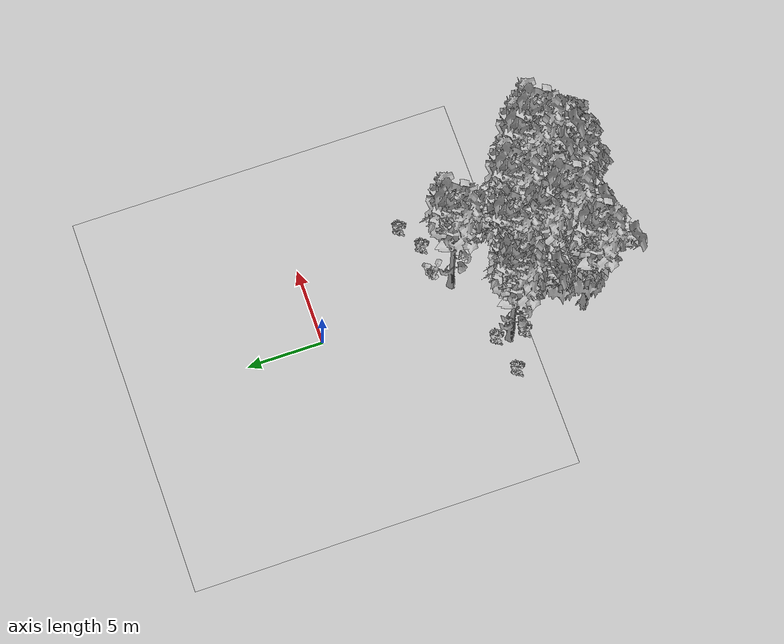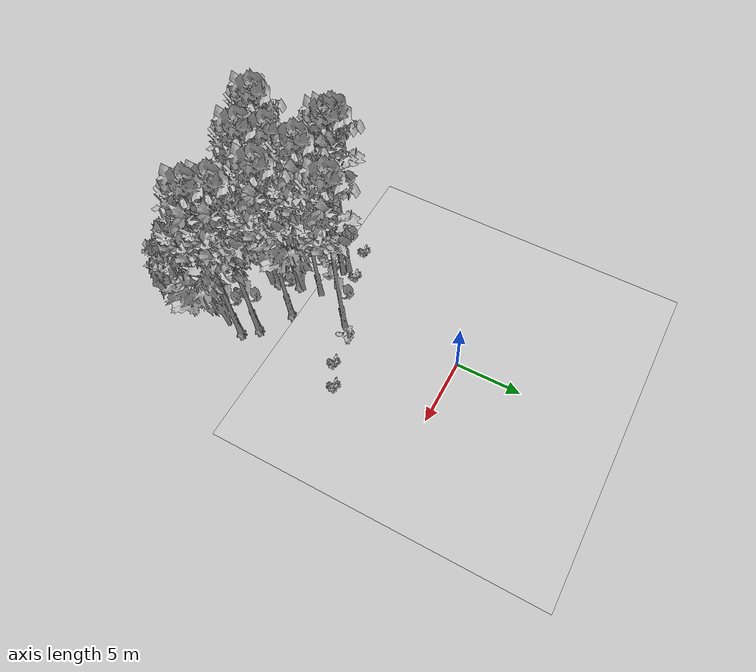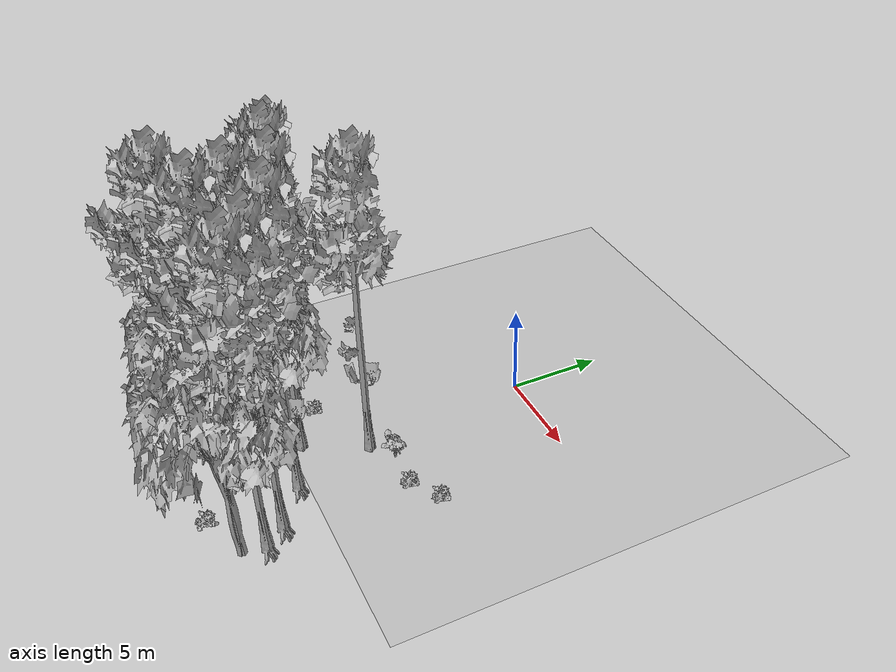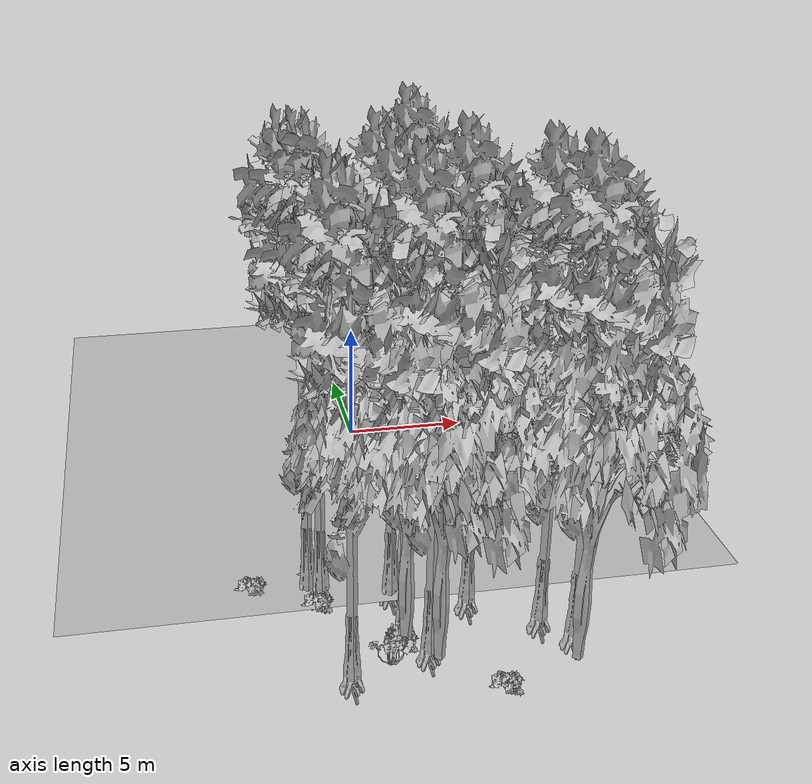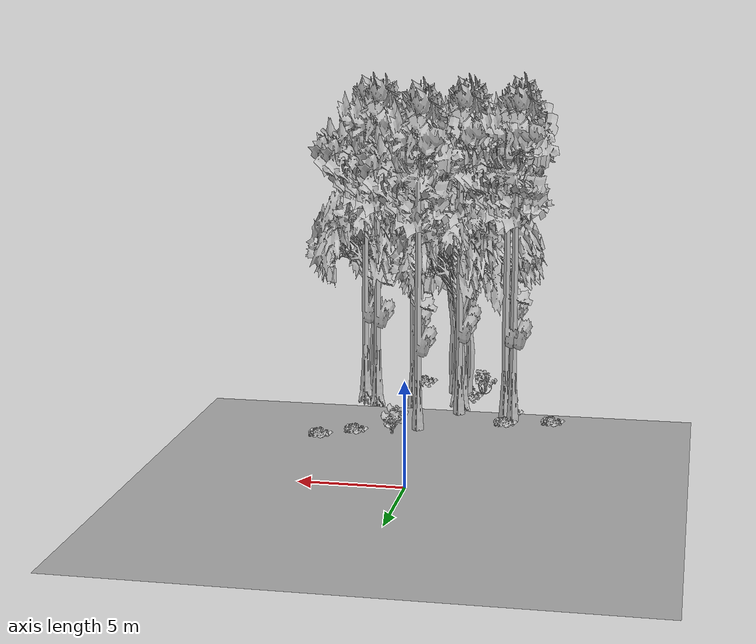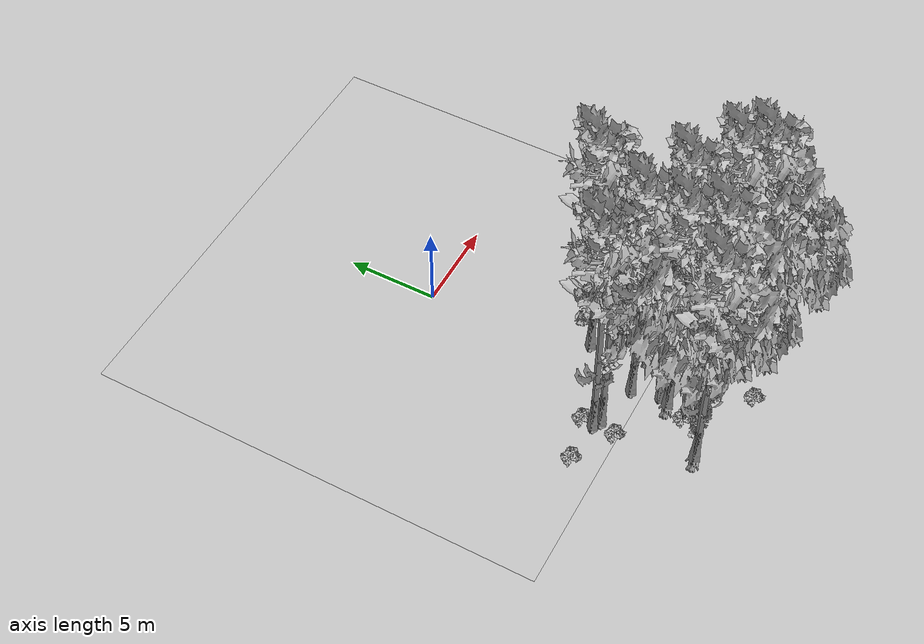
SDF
<sdf version="1.7">
 <world name="default">
  <model name="ground_plane">
   <static>1</static>
   <link name="link">
    <collision name="collision">
     <pose>-50 0 0 0 -0 0</pose>
     <geometry><plane><normal>0 0 1</normal><size>80 80</size></plane></geometry>
     <surface><contact><ode><min_depth>0.01</min_depth><max_vel>0</max_vel></ode></contact></surface>
    </collision>
    <visual name="grass">
     <cast_shadows>0</cast_shadows>
     <geometry>
      <mesh>
       <scale>0.46714285714285714 0.46714285714285714 0.1</scale>
       <uri>file://grass_plane/meshes/grass_plane.dae</uri>
      </mesh>
     </geometry>
    </visual>
   </link>
  </model>
  <model name="Tree 102">
   <static>1</static>
   <pose>-0.8120430416650066 -15.074554874999855 0 1.57079 -0 0</pose>
   <link name="link">
    <collision name="collision">
     <geometry><mesh><scale>3.5 5 3.5</scale><uri>model://tree_2/meshes/tree_2.obj</uri></mesh></geometry>
    </collision>
    <visual name="visual">
     <geometry><mesh><scale>3.5 5 3.5</scale><uri>model://tree_2/meshes/tree_2.obj</uri></mesh></geometry>
    </visual>
   </link>
  </model>
  <model name="Tree 119">
   <static>1</static>
   <pose>-0.6578170349143093 -12.017405250482902 0 1.57079 -0 0</pose>
   <link name="link">
    <collision name="collision">
     <geometry><mesh><scale>3.5 5 3.5</scale><uri>model://tree_9/meshes/tree_9.obj</uri></mesh></geometry>
    </collision>
    <visual name="visual">
     <geometry><mesh><scale>3.5 5 3.5</scale><uri>model://tree_9/meshes/tree_9.obj</uri></mesh></geometry>
    </visual>
   </link>
  </model>
  <model name="Tree 189">
   <static>1</static>
   <pose>-2.843705343816538 -16.501149992675472 0 1.57079 -0 0</pose>
   <link name="link">
    <collision name="collision">
     <geometry><mesh><scale>3.5 5 3.5</scale><uri>model://tree_9/meshes/tree_9.obj</uri></mesh></geometry>
    </collision>
    <visual name="visual">
     <geometry><mesh><scale>3.5 5 3.5</scale><uri>model://tree_9/meshes/tree_9.obj</uri></mesh></geometry>
    </visual>
   </link>
  </model>
  <model name="Tree 198">
   <static>1</static>
   <pose>4.74025885542143 -16.72520494927168 0 1.57079 -0 0</pose>
   <link name="link">
    <collision name="collision">
     <geometry><mesh><scale>3.5 5 3.5</scale><uri>model://tree_2/meshes/tree_2.obj</uri></mesh></geometry>
    </collision>
    <visual name="visual">
     <geometry><mesh><scale>3.5 5 3.5</scale><uri>model://tree_2/meshes/tree_2.obj</uri></mesh></geometry>
    </visual>
   </link>
  </model>
  <model name="Tree 234">
   <static>1</static>
   <pose>0.1624789871438992 -15.924554394783446 0 1.57079 -0 0</pose>
   <link name="link">
    <collision name="collision">
     <geometry><mesh><scale>3.5 5 3.5</scale><uri>model://tree_2/meshes/tree_2.obj</uri></mesh></geometry>
    </collision>
    <visual name="visual">
     <geometry><mesh><scale>3.5 5 3.5</scale><uri>model://tree_2/meshes/tree_2.obj</uri></mesh></geometry>
    </visual>
   </link>
  </model>
  <model name="Tree 247">
   <static>1</static>
   <pose>-0.04565344887065237 -15.591955945789103 0 1.57079 -0 0</pose>
   <link name="link">
    <collision name="collision">
     <geometry><mesh><scale>3.5 5 3.5</scale><uri>model://tree_9/meshes/tree_9.obj</uri></mesh></geometry>
    </collision>
    <visual name="visual">
     <geometry><mesh><scale>3.5 5 3.5</scale><uri>model://tree_9/meshes/tree_9.obj</uri></mesh></geometry>
    </visual>
   </link>
  </model>
  <model name="Tree 275">
   <static>1</static>
   <pose>-3.563522392800486 -11.249197422716719 0 1.57079 -0 0</pose>
   <link name="link">
    <collision name="collision">
     <geometry><mesh><scale>3.5 5 3.5</scale><uri>model://tree_9/meshes/tree_9.obj</uri></mesh></geometry>
    </collision>
    <visual name="visual">
     <geometry><mesh><scale>3.5 5 3.5</scale><uri>model://tree_9/meshes/tree_9.obj</uri></mesh></geometry>
    </visual>
   </link>
  </model>
  <model name="Tree 277">
   <static>1</static>
   <pose>1.9327708787759192 -13.050684927620715 0 1.57079 -0 0</pose>
   <link name="link">
    <collision name="collision">
     <geometry><mesh><scale>3.5 5 3.5</scale><uri>model://tree_9/meshes/tree_9.obj</uri></mesh></geometry>
    </collision>
    <visual name="visual">
     <geometry><mesh><scale>3.5 5 3.5</scale><uri>model://tree_9/meshes/tree_9.obj</uri></mesh></geometry>
    </visual>
   </link>
  </model>
  <model name="Tree 304">
   <static>1</static>
   <pose>4.175243855858184 -14.530132180567222 0 1.57079 -0 0</pose>
   <link name="link">
    <collision name="collision">
     <geometry><mesh><scale>3.5 5 3.5</scale><uri>model://tree_9/meshes/tree_9.obj</uri></mesh></geometry>
    </collision>
    <visual name="visual">
     <geometry><mesh><scale>3.5 5 3.5</scale><uri>model://tree_9/meshes/tree_9.obj</uri></mesh></geometry>
    </visual>
   </link>
  </model>
  <model name="Tree 321">
   <static>1</static>
   <pose>-0.5692725247034787 -14.004420711663911 0 1.57079 -0 0</pose>
   <link name="link">
    <collision name="collision">
     <geometry><mesh><scale>3.5 5 3.5</scale><uri>model://tree_9/meshes/tree_9.obj</uri></mesh></geometry>
    </collision>
    <visual name="visual">
     <geometry><mesh><scale>3.5 5 3.5</scale><uri>model://tree_9/meshes/tree_9.obj</uri></mesh></geometry>
    </visual>
   </link>
  </model>
  <model name="Tree 447">
   <static>1</static>
   <pose>-0.5292125060628692 -13.50891031638966 0 1.57079 -0 0</pose>
   <link name="link">
    <collision name="collision">
     <geometry><mesh><scale>3.5 5 3.5</scale><uri>model://tree_2/meshes/tree_2.obj</uri></mesh></geometry>
    </collision>
    <visual name="visual">
     <geometry><mesh><scale>3.5 5 3.5</scale><uri>model://tree_2/meshes/tree_2.obj</uri></mesh></geometry>
    </visual>
   </link>
  </model>
  <model name="Tree 582">
   <static>1</static>
   <pose>5.040124385480205 -15.560342798813032 0 1.57079 -0 0</pose>
   <link name="link">
    <collision name="collision">
     <geometry><mesh><scale>3.5 5 3.5</scale><uri>model://tree_9/meshes/tree_9.obj</uri></mesh></geometry>
    </collision>
    <visual name="visual">
     <geometry><mesh><scale>3.5 5 3.5</scale><uri>model://tree_9/meshes/tree_9.obj</uri></mesh></geometry>
    </visual>
   </link>
  </model>
  <model name="Tree 609">
   <static>1</static>
   <pose>0.981454684006728 -8.925124616106437 0 1.57079 -0 0</pose>
   <link name="link">
    <collision name="collision">
     <geometry><mesh><scale>3.5 5 3.5</scale><uri>model://tree_9/meshes/tree_9.obj</uri></mesh></geometry>
    </collision>
    <visual name="visual">
     <geometry><mesh><scale>3.5 5 3.5</scale><uri>model://tree_9/meshes/tree_9.obj</uri></mesh></geometry>
    </visual>
   </link>
  </model>
  <model name="Tree 620">
   <static>1</static>
   <pose>-3.1228411501873836 -11.507242441785728 0 1.57079 -0 0</pose>
   <link name="link">
    <collision name="collision">
     <geometry><mesh><scale>3.5 5 3.5</scale><uri>model://tree_9/meshes/tree_9.obj</uri></mesh></geometry>
    </collision>
    <visual name="visual">
     <geometry><mesh><scale>3.5 5 3.5</scale><uri>model://tree_9/meshes/tree_9.obj</uri></mesh></geometry>
    </visual>
   </link>
  </model>
  <model name="Bush 175">
   <static>1</static>
   <pose>-0.8417679959149567 -15.024886377143396 0 1.57079 -0 0</pose>
   <link name="link">
    <collision name="collision">
     <geometry><mesh><scale>2 2 2</scale><uri>model://bush_2/meshes/bush_2.obj</uri></mesh></geometry>
     <surface><contact><collide_without_contact>false</collide_without_contact></contact></surface>
    </collision>
    <visual name="visual">
     <geometry><mesh><scale>2 2 2</scale><uri>model://bush_2/meshes/bush_2.obj</uri></mesh></geometry>
    </visual>
   </link>
  </model>
  <model name="Bush 221">
   <static>1</static>
   <pose>-3.3514020148626997 -12.37999891709224 0 1.57079 -0 0</pose>
   <link name="link">
    <collision name="collision">
     <geometry><mesh><scale>2 2 2</scale><uri>model://bush_2/meshes/bush_2.obj</uri></mesh></geometry>
     <surface><contact><collide_without_contact>false</collide_without_contact></contact></surface>
    </collision>
    <visual name="visual">
     <geometry><mesh><scale>2 2 2</scale><uri>model://bush_2/meshes/bush_2.obj</uri></mesh></geometry>
    </visual>
   </link>
  </model>
  <model name="Bush 225">
   <static>1</static>
   <pose>2.1213310786300994 -7.996477417864639 0 1.57079 -0 0</pose>
   <link name="link">
    <collision name="collision">
     <geometry><mesh><scale>2 2 2</scale><uri>model://bush_0/meshes/bush_0.obj</uri></mesh></geometry>
     <surface><contact><collide_without_contact>false</collide_without_contact></contact></surface>
    </collision>
    <visual name="visual">
     <geometry><mesh><scale>2 2 2</scale><uri>model://bush_0/meshes/bush_0.obj</uri></mesh></geometry>
    </visual>
   </link>
  </model>
  <model name="Bush 280">
   <static>1</static>
   <pose>-1.3943718850365485 -16.008149951503388 0 1.57079 -0 0</pose>
   <link name="link">
    <collision name="collision">
     <geometry><mesh><scale>2 2 2</scale><uri>model://bush_4/meshes/bush_4.obj</uri></mesh></geometry>
     <surface><contact><collide_without_contact>false</collide_without_contact></contact></surface>
    </collision>
    <visual name="visual">
     <geometry><mesh><scale>2 2 2</scale><uri>model://bush_4/meshes/bush_4.obj</uri></mesh></geometry>
    </visual>
   </link>
  </model>
  <model name="Bush 284">
   <static>1</static>
   <pose>-3.2419287477538887 -10.522109842198361 0 1.57079 -0 0</pose>
   <link name="link">
    <collision name="collision">
     <geometry><mesh><scale>2 2 2</scale><uri>model://bush_2/meshes/bush_2.obj</uri></mesh></geometry>
     <surface><contact><collide_without_contact>false</collide_without_contact></contact></surface>
    </collision>
    <visual name="visual">
     <geometry><mesh><scale>2 2 2</scale><uri>model://bush_2/meshes/bush_2.obj</uri></mesh></geometry>
    </visual>
   </link>
  </model>
  <model name="Bush 296">
   <static>1</static>
   <pose>-5.611323629468103 -11.063472115247297 0 1.57079 -0 0</pose>
   <link name="link">
    <collision name="collision">
     <geometry><mesh><scale>2 2 2</scale><uri>model://bush_2/meshes/bush_2.obj</uri></mesh></geometry>
     <surface><contact><collide_without_contact>false</collide_without_contact></contact></surface>
    </collision>
    <visual name="visual">
     <geometry><mesh><scale>2 2 2</scale><uri>model://bush_2/meshes/bush_2.obj</uri></mesh></geometry>
    </visual>
   </link>
  </model>
  <model name="Bush 379">
   <static>1</static>
   <pose>4.031022241804486 -8.055866619805254 0 1.57079 -0 0</pose>
   <link name="link">
    <collision name="collision">
     <geometry><mesh><scale>2 2 2</scale><uri>model://bush_2/meshes/bush_2.obj</uri></mesh></geometry>
     <surface><contact><collide_without_contact>false</collide_without_contact></contact></surface>
    </collision>
    <visual name="visual">
     <geometry><mesh><scale>2 2 2</scale><uri>model://bush_2/meshes/bush_2.obj</uri></mesh></geometry>
    </visual>
   </link>
  </model>
  <model name="Bush 394">
   <static>1</static>
   <pose>5.638870786232268 -7.080061596762775 0 1.57079 -0 0</pose>
   <link name="link">
    <collision name="collision">
     <geometry><mesh><scale>2 2 2</scale><uri>model://bush_2/meshes/bush_2.obj</uri></mesh></geometry>
     <surface><contact><collide_without_contact>false</collide_without_contact></contact></surface>
    </collision>
    <visual name="visual">
     <geometry><mesh><scale>2 2 2</scale><uri>model://bush_2/meshes/bush_2.obj</uri></mesh></geometry>
    </visual>
   </link>
  </model>
  <model name="Bush 579">
   <static>1</static>
   <pose>2.069748289574548 -17.70857858556881 0 1.57079 -0 0</pose>
   <link name="link">
    <collision name="collision">
     <geometry><mesh><scale>2 2 2</scale><uri>model://bush_2/meshes/bush_2.obj</uri></mesh></geometry>
     <surface><contact><collide_without_contact>false</collide_without_contact></contact></surface>
    </collision>
    <visual name="visual">
     <geometry><mesh><scale>2 2 2</scale><uri>model://bush_2/meshes/bush_2.obj</uri></mesh></geometry>
    </visual>
   </link>
  </model>
 </world>
</sdf>
